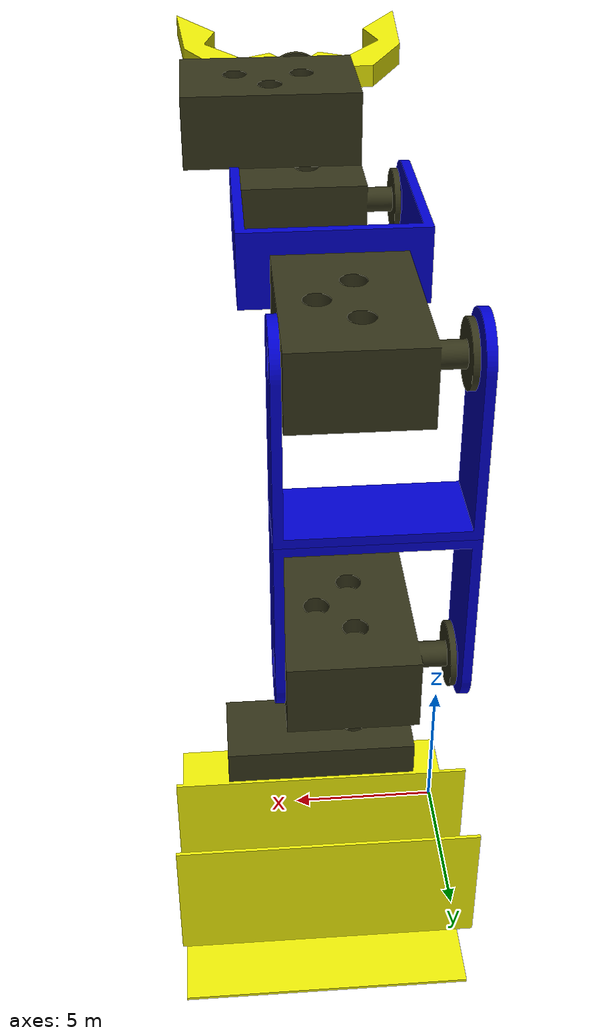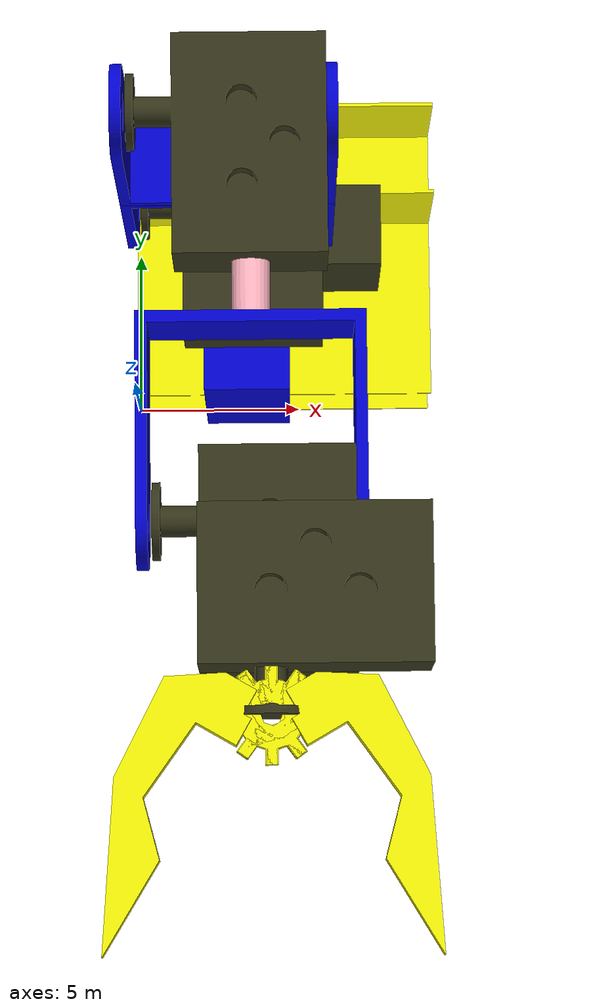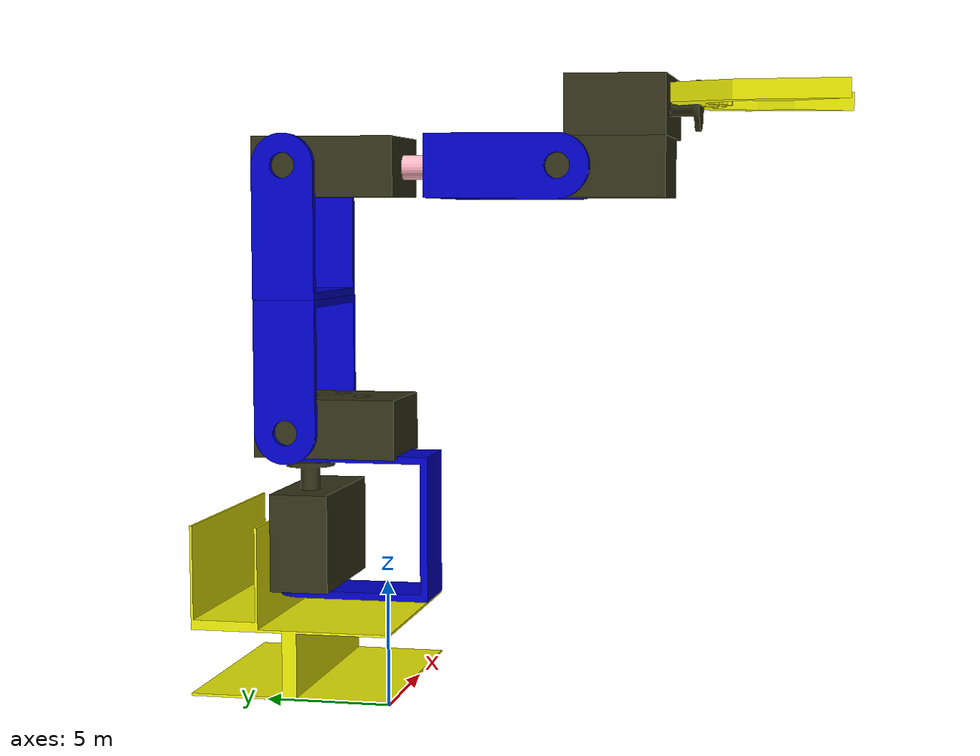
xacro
<?xml version="1.0"?>
<robot name="rjje_arm" xmlns:xacro="http://www.ros.org/wiki/xacro">

  <xacro:include filename="$(find rjje_arm)/urdf/definitions.xacro" />

  <!-- Instances -->

  <link name="world">
  </link>

  <xacro:m_link_mesh
    name="base_link"
    origin_xyz="0.0 0.0 0.0"
    origin_rpy="0.0 0.0 0.0"
    meshfile="package://rjje_arm/meshes/base.stl"
    meshscale="1 1 1"
    mass="157.633"
    ixx="13.235" ixy="0" ixz="0"
    iyy="13.235" iyz="0"
    izz="9.655"
    color="yellow"
    />

  <gazebo reference="base_link">
    <material>Gazebo/Yellow</material>
  </gazebo>

  <xacro:m_joint type="fixed"
    axis_xyz="0 0 1"
    origin_rpy="0 0 0" origin_xyz="0 0 0.0"
    parent="world" child="base_link"
    limit_e="1000" limit_l="0" limit_u="0.5" limit_v="0.5" />

  <xacro:m_link_mesh
    name="link1"
    origin_xyz="0.0 0.0 0.0"
    origin_rpy="0.0 0.0 0.0"
    meshfile="package://rjje_arm/meshes/motor_and_frame.stl"
    meshscale="1 1 1"
    mass="157.633"
    ixx="13.235" ixy="0" ixz="0"
    iyy="13.235" iyz="0"
    izz="9.655"
    color="dark_green"
    />

  <xacro:m_joint type="fixed"
    axis_xyz="0 0 1"
    origin_rpy="0 0 0" origin_xyz="3.45 4.2 4.0"
    parent="base_link" child="link1"
    limit_e="1000" limit_l="0" limit_u="0.5" limit_v="0.5" />

  <xacro:m_link_mesh
    name="bracket_1"
    origin_xyz="0.0 0.0 0.0"
    origin_rpy="0.0 0.0 3.14"
    meshfile="package://rjje_arm/meshes/thin_bracket.stl"
    meshscale="1 1 1"
    mass="157.633"
    ixx="13.235" ixy="0" ixz="0"
    iyy="13.235" iyz="0"
    izz="9.655"
    color="blue"
    />

  <xacro:m_joint type="revolute"
    axis_xyz="0 0 1"
    origin_rpy="0 0 0" origin_xyz="0 0 5.3"
    parent="link1" child="bracket_1"
    limit_e="1000" limit_l="-1.57" limit_u="1.57" limit_v="1.5" />

  <xacro:m_link_mesh
    name="link_2"
    origin_xyz="0.0 0.0 0.0"
    origin_rpy="0.0 0.0 0.0"
    meshfile="package://rjje_arm/meshes/motor_and_frame.stl"
    meshscale="1 1 1"
    mass="157.633"
    ixx="13.235" ixy="0" ixz="0"
    iyy="13.235" iyz="0"
    izz="9.655"
    color="dark_green"
    />

  <xacro:m_joint type="fixed"
    axis_xyz="0 0 1"
    origin_xyz="2.2 0.0 1.4" origin_rpy="1.57 0.0 -1.57"
    parent="bracket_1" child="link_2"
    limit_e="1000" limit_l="-1.57" limit_u="1.57" limit_v="0.5" />

  <xacro:m_link_mesh
    name="bracket_2_1"
    origin_xyz="0.0 0.0 0.0"
    origin_rpy="0.0 0.0 0.0"
    meshfile="package://rjje_arm/meshes/thin_bracket.stl"
    meshscale="1 1 1"
    mass="157.633"
    ixx="13.235" ixy="0" ixz="0"
    iyy="13.235" iyz="0"
    izz="9.655"
    color="blue"
    />

  <xacro:m_joint type="revolute"
    axis_xyz="0 0 1"
    origin_xyz="0.0 0.0 5.3" origin_rpy="0.0 0.0 0.0"
    parent="link_2" child="bracket_2_1"
    limit_e="1000" limit_l="-1.57" limit_u="1.57" limit_v="1.5" />

  <xacro:m_link_mesh
    name="bracket_2_2"
    origin_xyz="0.0 0.0 0.0"
    origin_rpy="0.0 0.0 0.0"
    meshfile="package://rjje_arm/meshes/thin_bracket.stl"
    meshscale="1 1 1"
    mass="157.633"
    ixx="13.235" ixy="0" ixz="0"
    iyy="13.235" iyz="0"
    izz="9.655"
    color="blue"
    />

  <xacro:m_joint type="fixed"
    axis_xyz="0 0 1"
    origin_xyz="0.0 10.5 0.0" origin_rpy="0.0 0.0 3.14"
    parent="bracket_2_1" child="bracket_2_2"
    limit_e="1000" limit_l="-1.57" limit_u="1.57" limit_v="0.5" />

  <xacro:m_link_mesh
    name="link_3"
    origin_xyz="0.0 0.0 0.0"
    origin_rpy="0.0 0.0 0.0"
    meshfile="package://rjje_arm/meshes/motor_and_frame.stl"
    meshscale="1 1 1"
    mass="157.633"
    ixx="13.235" ixy="0" ixz="0"
    iyy="13.235" iyz="0"
    izz="9.655"
    color="dark_green"
    />

  <xacro:m_joint type="revolute"
    axis_xyz="0 0 1"
    origin_xyz="0.0 0.0 -5.3" origin_rpy="0.0 0.0 3.14"
    parent="bracket_2_2" child="link_3"
    limit_e="1000" limit_l="-1.57" limit_u="1.57" limit_v="1.5" />

  <!-- This is a "fake" link that represents attachment to link 3 -->
  <xacro:m_fake_link
    name="bracket_3_1"
    color="pink"
    origin_xyz="0.0 0.0 0.75"
    origin_rpy="0.0 0.0 0.0"
    length="1.5"
    radius="0.5"
    />

  <xacro:m_joint type="fixed"
    axis_xyz="0 0 1"
    origin_xyz="4.0 0.0 2.0" origin_rpy="0.0 1.57 0.0"
    parent="link_3" child="bracket_3_1"
    limit_e="1000" limit_l="-1.57" limit_u="1.57" limit_v="0.5" />

  <xacro:m_link_mesh
    name="bracket_3_2"
    origin_xyz="0.0 0.0 0.0"
    origin_rpy="0.0 0.0 0.0"
    meshfile="package://rjje_arm/meshes/thin_bracket.stl"
    meshscale="1 1 1"
    mass="157.633"
    ixx="13.235" ixy="0" ixz="0"
    iyy="13.235" iyz="0"
    izz="9.655"
    color="blue"
    />

  <xacro:m_joint type="fixed"
    axis_xyz="0 0 1"
    origin_xyz="-2.65 0.0 6.75" origin_rpy="-1.57 0.0 1.57"
    parent="bracket_3_1" child="bracket_3_2"
    limit_e="1000" limit_l="-1.57" limit_u="1.57" limit_v="0.5" />

  <xacro:m_link_mesh
    name="link_4"
    origin_xyz="0.0 0.0 0.0"
    origin_rpy="0.0 0.0 0.0"
    meshfile="package://rjje_arm/meshes/motor_and_frame.stl"
    meshscale="1 1 1"
    mass="157.633"
    ixx="13.235" ixy="0" ixz="0"
    iyy="13.235" iyz="0"
    izz="9.655"
    color="dark_green"
    />

  <xacro:m_joint type="revolute"
    axis_xyz="0 0 1"
    origin_xyz="0.0 0.0 -5.3" origin_rpy="0.0 0.0 -1.57"
    parent="bracket_3_2" child="link_4"
    limit_e="1000" limit_l="-1.57" limit_u="0.43" limit_v="1.5" />

  <xacro:m_link_mesh
    name="link_5"
    origin_xyz="0.0 0.0 0.0"
    origin_rpy="0.0 0.0 0.0"
    meshfile="package://rjje_arm/meshes/motor_and_frame.stl"
    meshscale="1 1 1"
    mass="157.633"
    ixx="13.235" ixy="0" ixz="0"
    iyy="13.235" iyz="0"
    izz="9.655"
    color="dark_green"
    />

  <xacro:m_joint type="fixed"
    axis_xyz="0 0 1"
    origin_xyz="0.0 2.4 2.2" origin_rpy="0.0 1.57 0.0"
    parent="link_4" child="link_5"
    limit_e="1000" limit_l="-1.57" limit_u="1.57" limit_v="0.5" />

  <xacro:m_link_mesh
    name="link_6"
    origin_xyz="0.0 0.0 0.0"
    origin_rpy="0.0 0.0 0.0"
    meshfile="package://rjje_arm/meshes/motor_and_frame.stl"
    meshscale="0 0 0"
    mass="157.633"
    ixx="13.235" ixy="0" ixz="0"
    iyy="13.235" iyz="0"
    izz="9.655"
    color="dark_green"
    />

  <xacro:m_joint type="revolute"
    axis_xyz="0 0 1"
    origin_xyz="0.0 0.0 0.0" origin_rpy="0.0 0.0 0.0"
    parent="link_5" child="link_6"
    limit_e="1000" limit_l="-1.57" limit_u="1.57" limit_v="1.5" />

  <xacro:m_link_mesh
    name="left_gripper"
    origin_xyz="0.0 0.0 0.0"
    origin_rpy="0.0 0.0 0.0"
    meshfile="package://rjje_arm/meshes/left_gripper.stl"
    meshscale="1 1 1"
    mass="157.633"
    ixx="13.235" ixy="0" ixz="0"
    iyy="13.235" iyz="0"
    izz="9.655"
    color="yellow"
    />

  <xacro:m_joint type="revolute"
    axis_xyz="0 1 0"
    origin_xyz="0.0 0.0 5.2" origin_rpy="0.0 0.0 0.0"
    parent="link_6" child="left_gripper"
    limit_e="1000" limit_l="-0.61" limit_u="0.0" limit_v="1.5" />

  <xacro:m_link_mesh
    name="right_gripper"
    origin_xyz="0.0 0.0 0.0"
    origin_rpy="0.0 0.0 0.0"
    meshfile="package://rjje_arm/meshes/right_gripper.stl"
    meshscale="1 1 1"
    mass="157.633"
    ixx="13.235" ixy="0" ixz="0"
    iyy="13.235" iyz="0"
    izz="9.655"
    color="yellow"
    />

  <xacro:m_mimic_joint
    joint_parent="link_6"
    joint_child="left_gripper"
    type="revolute"
    axis_xyz="0 1 0"
    origin_xyz="0.0 0.0 5.2" origin_rpy="0.0 0.0 0.0"
    parent="link_6" child="right_gripper"
    limit_e="1000" limit_l="0.61" limit_u="0.0" limit_v="1.5"
    multiplier="-1"
    offset="0"
    />

</robot>

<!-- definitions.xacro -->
<robot name="definitions" xmlns:xacro="http://www.ros.org/wiki/xacro">
  <material name="blue">
    <color rgba="0 0 0.8 1"/>
  </material>
  <material name="pink">
    <color rgba="1.0 0.71 0.76 1.0"/>
  </material>
  <material name="yellow">
    <color rgba="0.93 0.93 0.02 1.0"/>
  </material>
  <material name="dark_green">
    <color rgba="0.2 0.2 0.1 1.0"/>
  </material>

  <xacro:macro name="m_link_mesh" params="name origin_xyz origin_rpy meshfile meshscale mass ixx ixy ixz iyy iyz izz color">
    <link name="${name}">
      <inertial>
        <mass value="${mass}" />
        <origin rpy="${origin_rpy}" xyz="${origin_xyz}" />
        <inertia ixx="${ixx}" ixy="${ixy}" ixz="${ixz}" iyy="${iyy}" iyz="${iyz}" izz="${izz}" />
      </inertial>
      <collision>
        <origin rpy="${origin_rpy}" xyz="${origin_xyz}" />
        <geometry>
          <mesh filename="${meshfile}" scale="${meshscale}"/>
        </geometry>
      </collision>
      <visual>
        <origin rpy="${origin_rpy}" xyz="${origin_xyz}" />
        <geometry>
          <mesh filename="${meshfile}" scale="${meshscale}"/>
        </geometry>
        <material name="${color}"/>
      </visual>
    </link>
  </xacro:macro>

  <xacro:macro name="m_joint" params="type axis_xyz origin_rpy origin_xyz parent child limit_e limit_l limit_u limit_v">
    <joint name="${parent}_${child}" type="${type}">
      <axis xyz="${axis_xyz}"/>
      <limit effort="${limit_e}" lower="${limit_l}" upper="${limit_u}" velocity="${limit_v}" />
      <origin rpy="${origin_rpy}" xyz="${origin_xyz}"/>
      <parent link="${parent}" />
      <child link="${child}"/>
    </joint>
  </xacro:macro>

  <xacro:macro name="m_mimic_joint" params="joint_parent joint_child type axis_xyz origin_rpy origin_xyz parent child limit_e limit_l limit_u limit_v multiplier offset">
    <joint name="${parent}_${child}" type="${type}">
      <axis xyz="${axis_xyz}"/>
      <limit effort="${limit_e}" lower="${limit_l}" upper="${limit_u}" velocity="${limit_v}" />
      <origin rpy="${origin_rpy}" xyz="${origin_xyz}"/>
      <parent link="${parent}" />
      <child link="${child}"/>
      <mimic joint="${joint_parent}_${joint_child}" multiplier="${multiplier}" offset="${offset}"/>
    </joint>
  </xacro:macro>

  <xacro:macro name="m_fake_link" params="name color origin_xyz origin_rpy length radius">
    <link name="${name}">
      <visual>
        <origin xyz="${origin_xyz}" rpy="${origin_rpy}"/>
        <geometry>
            <cylinder length="${length}" radius="${radius}"/>
         </geometry>
         <material name="${color}"/>
      </visual>
      <collision>
          <origin xyz="${origin_xyz}" rpy="${origin_rpy}"/>
          <geometry>
              <cylinder length="${length}" radius="${radius}"/>
          </geometry>
      </collision>
      <inertial>
          <mass value="0.1" />
          <inertia ixx="0.03" iyy="0.03" izz="0.03" ixy="0.0" ixz="0.0" iyz="0.0" />
      </inertial>
    </link>
  </xacro:macro>

</robot>
